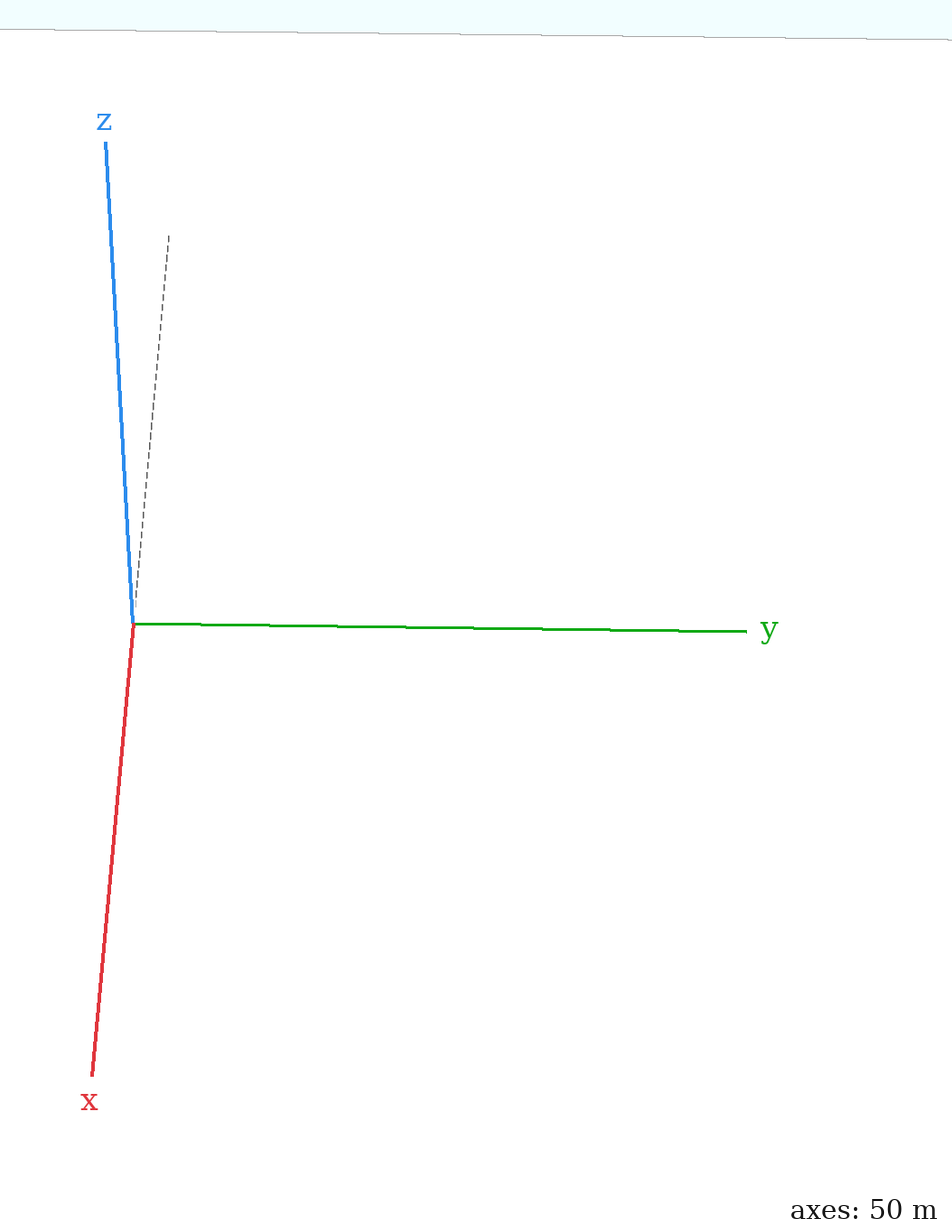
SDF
<?xml version="1.0" ?>
<sdf version="1.6">
  <model name="custom_ground">
    <static>true</static>

    <!-- White ground -->
    <link name="ground_link">
      <visual name="ground_visual">
        <geometry>
          <plane>
            <normal>0 0 1</normal>
            <size>100 100</size>
          </plane>
        </geometry>
        <material>
          <ambient>1 1 1 1</ambient>
          <diffuse>1 1 1 1</diffuse>
          <specular>0 0 0 1</specular>
        </material>
      </visual>

      <collision name="ground_collision">
        <geometry>
          <plane>
            <normal>0 0 1</normal>
            <size>100 100</size>
          </plane>
        </geometry>
      </collision>
    </link>

    <!-- Black line through origin (X-axis) -->
    <link name="line_link">
      <pose>0 0 0.01 0 0 0</pose>
      <visual name="line_visual">
        <geometry>
          <box>
            <size>100 0.05 0.01</size>
          </box>
        </geometry>
        <material>
          <ambient>0 0 0 1</ambient>
          <diffuse>0 0 0 1</diffuse>
        </material>
      </visual>
    </link>

  </model>
</sdf>
